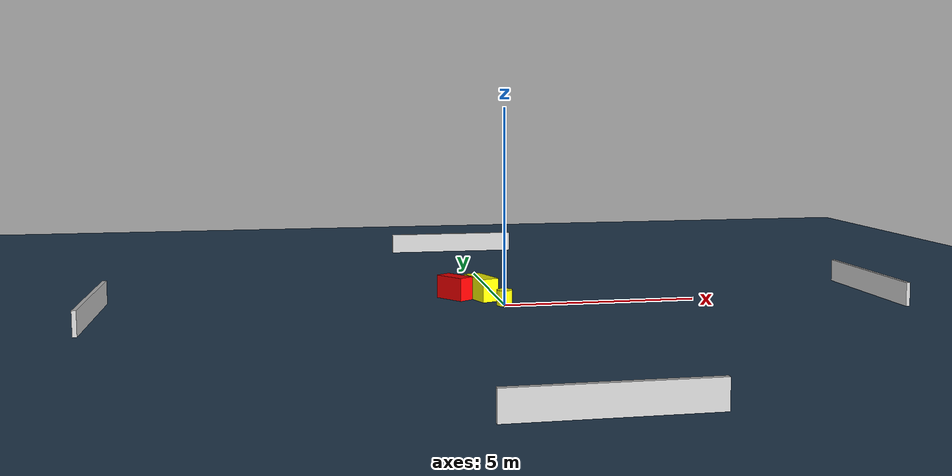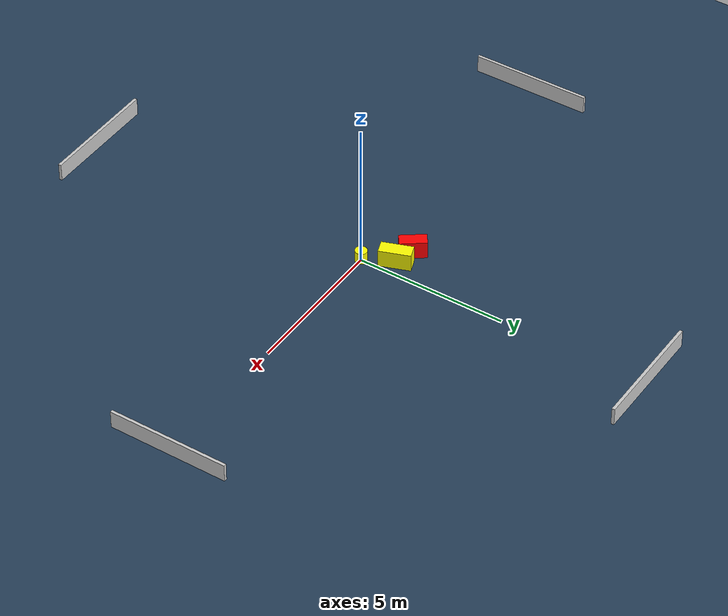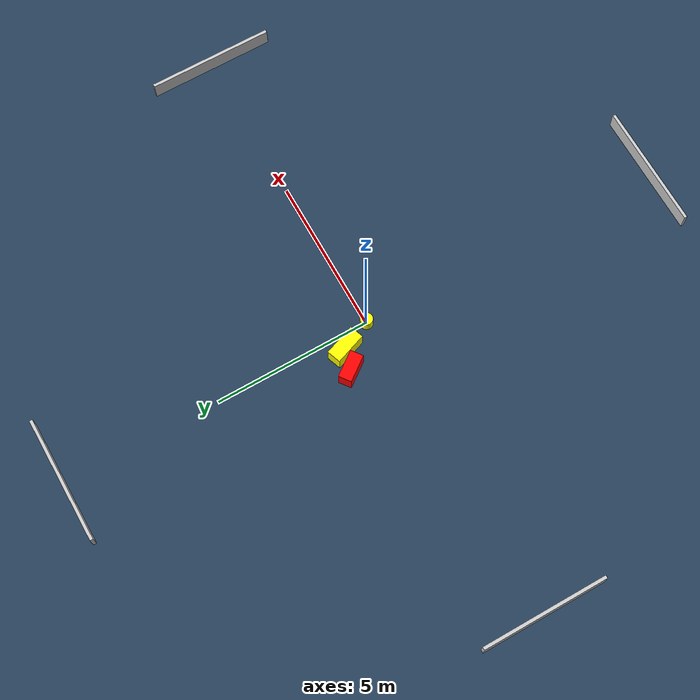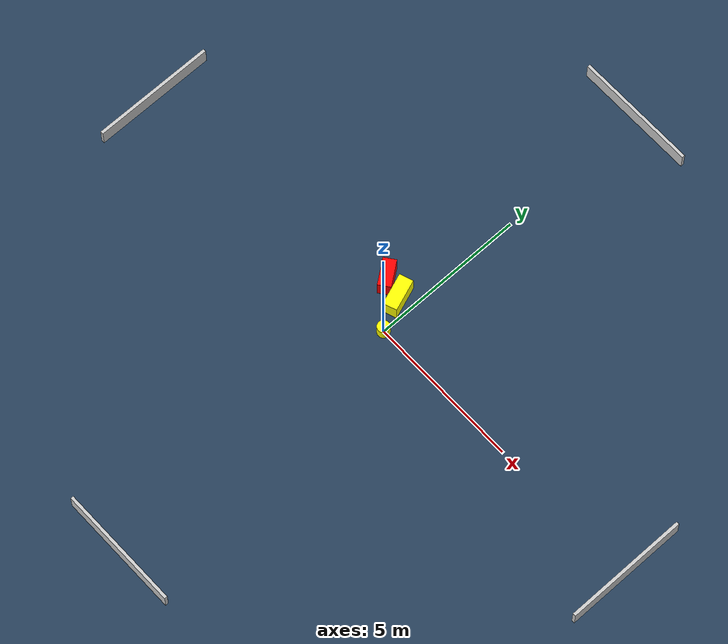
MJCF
<?xml version="1.0" ?>
<mujoco model="generated_environment">
  <option timestep="0.01" integrator="RK4" cone="elliptic"/>
  <default>
    <geom density="1"/>
  </default>
  <asset>
    <texture builtin="gradient" height="3072" name="skybox" rgb1="0.3 0.5 0.7" rgb2="0 0 0" type="skybox" width="512"/>
    <texture builtin="checker" height="300" name="groundplane" rgb1="0.2 0.3 0.4" rgb2="0.1 0.2 0.3" type="2d" width="300"/>
    <material name="groundplane" reflectance="0.2" texrepeat="5 5" texture="groundplane"/>
  </asset>
  <worldbody>
    <light dir="0 0 -1" directional="true" pos="0 0 1.5"/>
    <geom condim="3" friction="0.5 0.005 0.001" material="groundplane" name="floor" pos="0 0 0" size="0 0 0.05" type="plane"/>
    <body name="walls">
      <geom name="wall_1" condim="4" pos="-10.0 0.0 0.3" rgba="0.800000011920929 0.800000011920929 0.800000011920929 1.0" size="0.05 2.0 0.3" type="box"/>
      <geom name="wall_2" condim="4" pos="10.0 0.0 0.3" rgba="0.800000011920929 0.800000011920929 0.800000011920929 1.0" size="0.05 2.0 0.3" type="box"/>
      <geom name="wall_3" condim="4" pos="0.0 -10.0 0.3" rgba="0.800000011920929 0.800000011920929 0.800000011920929 1.0" size="2.0 0.05 0.3" type="box"/>
      <geom name="wall_4" condim="4" pos="0.0 10.0 0.3" rgba="0.800000011920929 0.800000011920929 0.800000011920929 1.0" size="2.0 0.05 0.3" type="box"/>
    </body>
    <body name="robot">
      <joint name="joint_x" type="slide" pos="0 0 0" axis="1 0 0"/>
      <joint name="joint_y" type="slide" pos="0 0 0" axis="0 1 0"/>
      <geom name="robot" type="cylinder" pos="0.0 0.0 0.2" size="0.2 0.2 0.0" mass="5.0" friction="1.0 0.005 0.0001" condim="4" rgba="1.0 1.0 0.0 1.0"/>
    </body>
    <body name="obstacle_1_movable">
      <geom name="obstacle_1_movable" condim="4" pos="-0.44651092458777514 0.9732031037529523 0.3" euler="0 0 19.93217896986657" friction="0.0 0.005 0.001" rgba="1.0 1.0 0.0 1.0" size="0.22548393921209098 0.5189186954462373 0.3" type="box" mass="0.1"/>
      <joint type="free"/>
    </body>
    <body name="obstacle_2_static">
      <geom name="obstacle_2_static" condim="4" pos="-1.1154366414702686 1.1578106057889566 0.3" euler="0 0 126.67667842995417" friction="0.0 0.005 0.001" rgba="1.0 0.0 0.0 1.0" size="0.43997084742338666 0.20867098730236933 0.3" type="box"/>
    </body>
  </worldbody>
  <actuator>
    <motor name="actuator_x" joint="joint_x" gear="1" ctrlrange="-1 1"/>
    <motor name="actuator_y" joint="joint_y" gear="1" ctrlrange="-1 1"/>
  </actuator>
</mujoco>
